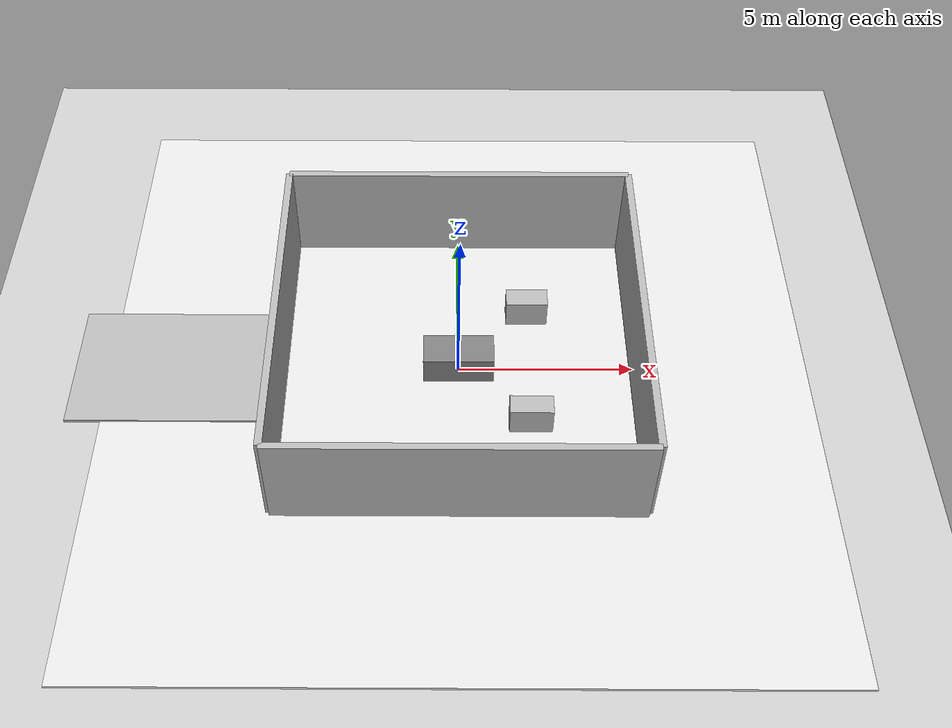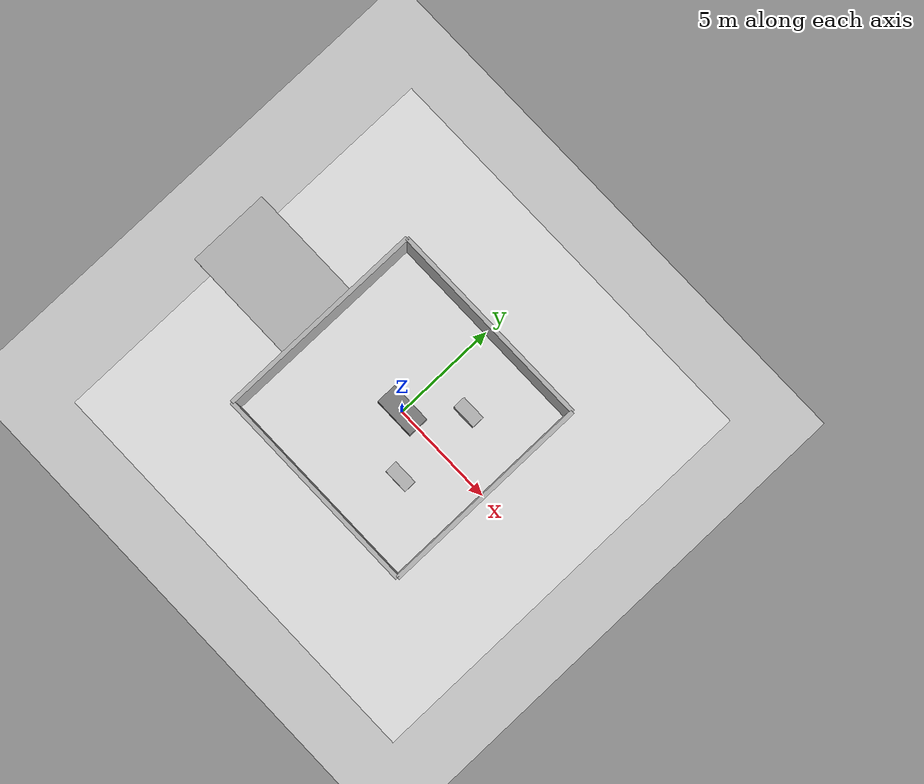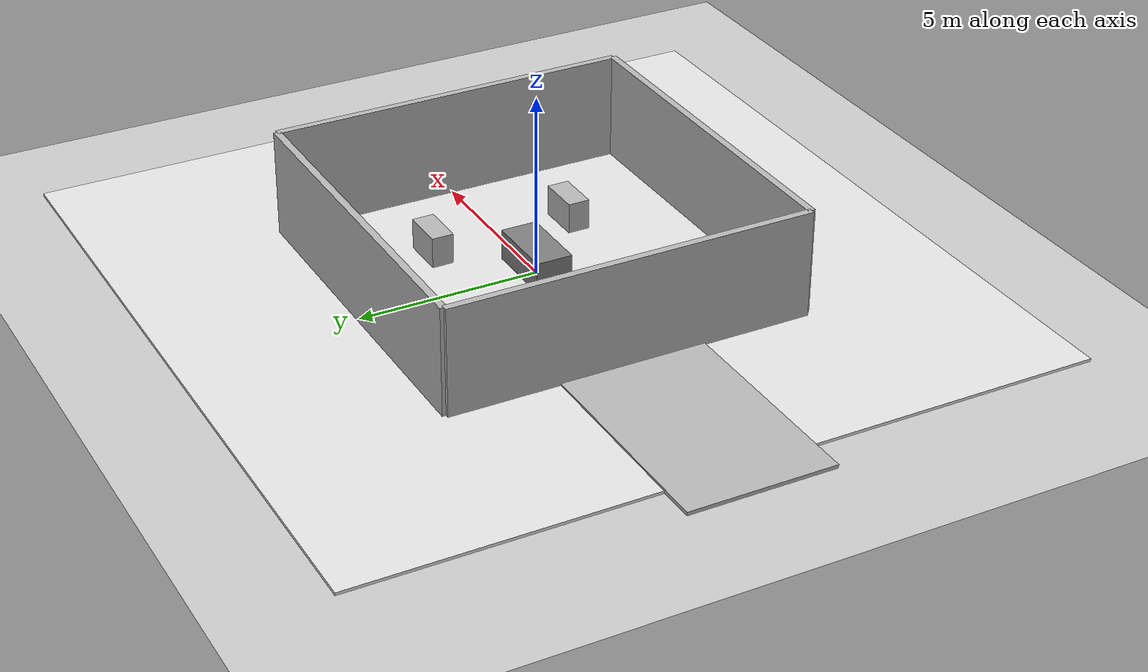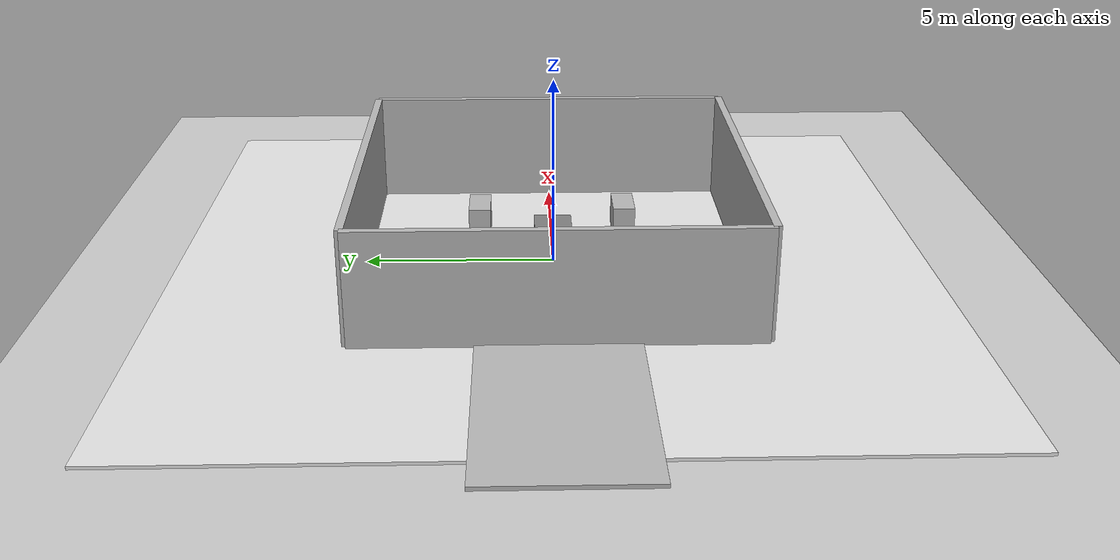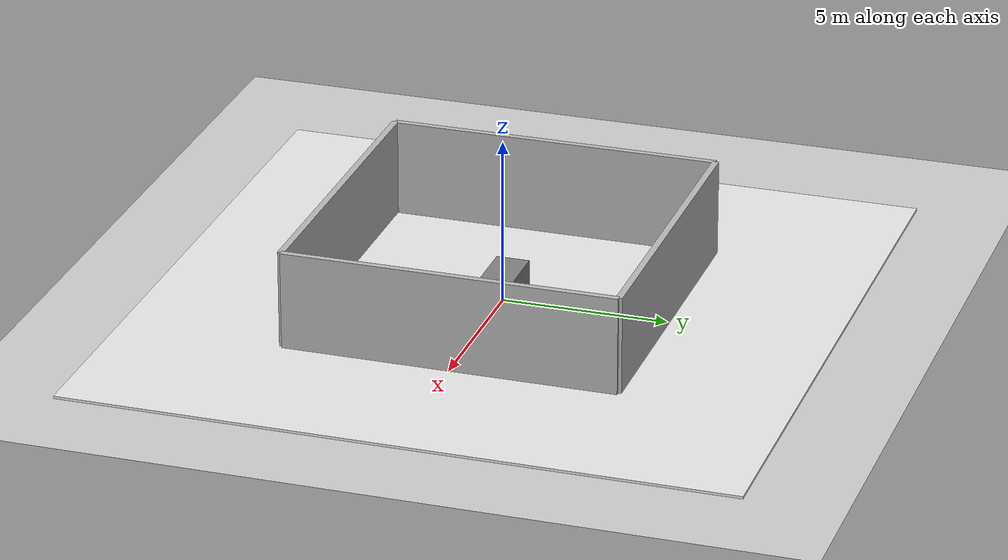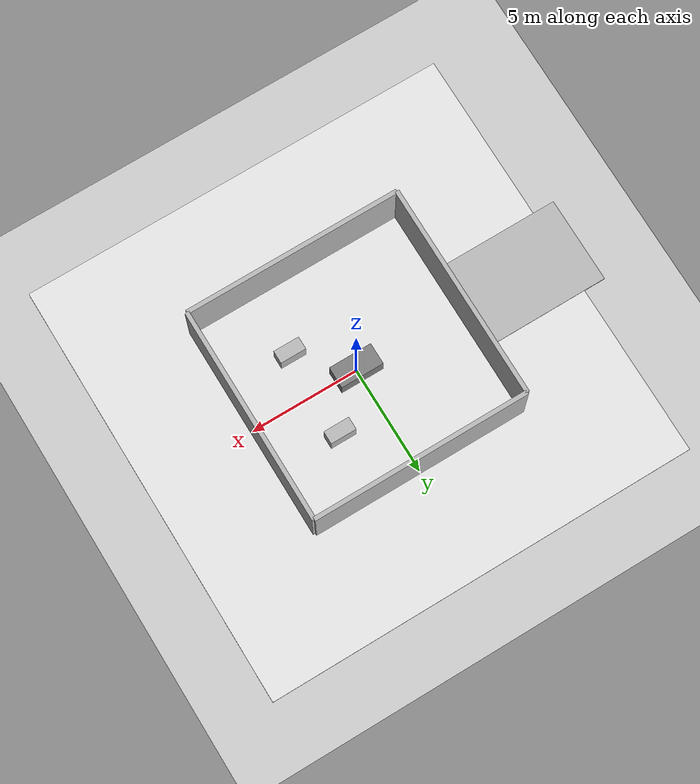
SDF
<sdf version="1.6">
 <world name="ot_hospital">
  <plugin name="link_attacher_plugin" filename="libgazebo_link_attacher.so"/>
  <include><uri>model://sun</uri></include>
  <include><uri>model://ground_plane</uri></include>
  <model name="hospital_floor">
   <static>true</static>
   <link name="floor">
    <collision name="collision"><geometry><box><size>20 20 0.1</size></box></geometry></collision>
    <visual name="visual">
     <geometry><box><size>20 20 0.1</size></box></geometry>
     <material><ambient>0.9 0.9 0.9 1</ambient></material>
    </visual>
   </link>
  </model>
  <model name="ot_room">
   <static>true</static>
   <link name="wall1">
    <pose>0 5 1.5 0 0 0</pose>
    <collision name="collision"><geometry><box><size>10 0.2 3</size></box></geometry></collision>
    <visual name="visual"><geometry><box><size>10 0.2 3</size></box></geometry></visual>
   </link>
   <link name="wall2">
    <pose>0 -5 1.5 0 0 0</pose>
    <collision name="collision"><geometry><box><size>10 0.2 3</size></box></geometry></collision>
    <visual name="visual"><geometry><box><size>10 0.2 3</size></box></geometry></visual>
   </link>
   <link name="wall3">
    <pose>5 0 1.5 0 0 0</pose>
    <collision name="collision"><geometry><box><size>0.2 10 3</size></box></geometry></collision>
    <visual name="visual"><geometry><box><size>0.2 10 3</size></box></geometry></visual>
   </link>
   <link name="wall4">
    <pose>-5 0 1.5 0 0 0</pose>
    <collision name="collision"><geometry><box><size>0.2 10 3</size></box></geometry></collision>
    <visual name="visual"><geometry><box><size>0.2 10 3</size></box></geometry></visual>
   </link>
  </model>
  <model name="corridor">
   <static>true</static>
   <link name="corridor_floor">
    <pose>-8 0 0.05 0 0 0</pose>
    <collision name="collision"><geometry><box><size>6 4 0.1</size></box></geometry></collision>
    <visual name="visual"><geometry><box><size>6 4 0.1</size></box></geometry></visual>
   </link>
  </model>
  <model name="surgery_table">
   <static>true</static>
   <link name="link">
    <pose>0 0 0.45 0 0 0</pose>
    <collision name="collision"><geometry><box><size>2 1 0.9</size></box></geometry></collision>
    <visual name="visual">
     <geometry><box><size>2 1 0.9</size></box></geometry>
     <material><ambient>0.5 0.5 0.5 1</ambient></material>
    </visual>
   </link>
  </model>
  <model name="instrument_table_1">
   <static>true</static>
   <link name="link">
    <pose>2 2 0.45 0 0 0</pose>
    <collision name="collision"><geometry><box><size>1.2 0.6 0.9</size></box></geometry></collision>
    <visual name="visual"><geometry><box><size>1.2 0.6 0.9</size></box></geometry></visual>
   </link>
  </model>
  <model name="instrument_table_2">
   <static>true</static>
   <link name="link">
    <pose>2 -2 0.45 0 0 0</pose>
    <collision name="collision"><geometry><box><size>1.2 0.6 0.9</size></box></geometry></collision>
    <visual name="visual"><geometry><box><size>1.2 0.6 0.9</size></box></geometry></visual>
   </link>
  </model>
 </world>
</sdf>
